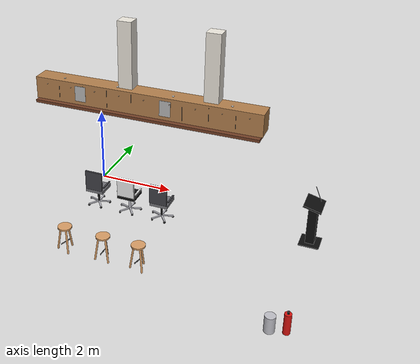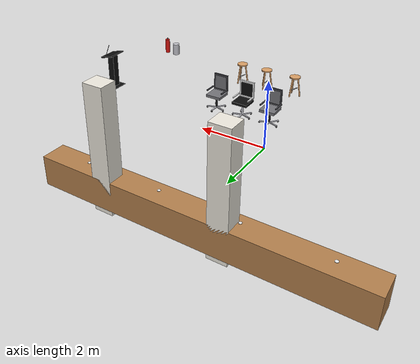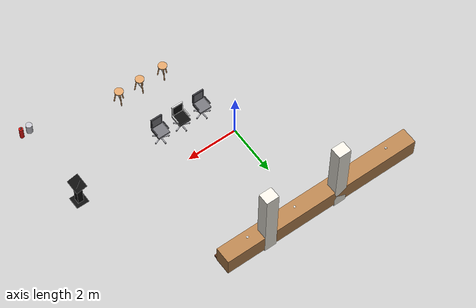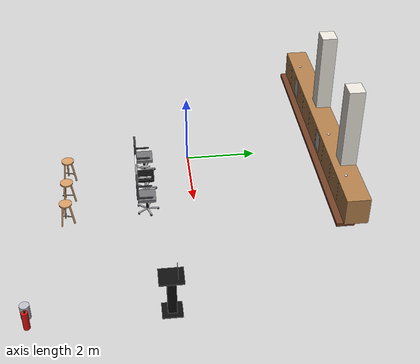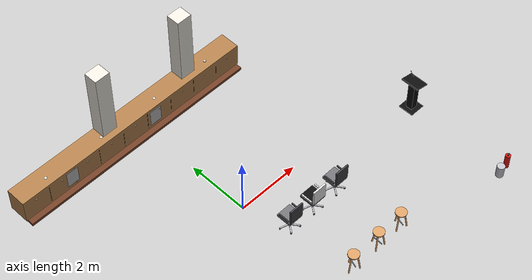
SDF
<sdf version="1.6">
 <world name="mahadev_lab">
  <include><uri>model://sun</uri></include>
  <model name="stool_pc_3">
   <static>true</static>
   <pose>0.7000 -3.4500 0.0000 0.0000 0.0000 1.2530</pose>
   <link name="link">
    <visual name="v1">
     <pose>0.0000 0.0000 0.6400 0.0000 0.0000 0.0000</pose>
     <geometry><cylinder><radius>0.17</radius><length>0.04</length></cylinder></geometry>
     <material>
      <ambient>0.85 0.62 0.4 1</ambient>
      <diffuse>0.85 0.62 0.4 1</diffuse>
      <specular>0.1 0.1 0.1 1</specular>
     </material>
    </visual>
    <visual name="v2">
     <pose>0.1500 0.0000 0.3100 0.0000 -0.1599 0.0000</pose>
     <geometry><cylinder><radius>0.022</radius><length>0.63</length></cylinder></geometry>
     <material>
      <ambient>0.85 0.62 0.4 1</ambient>
      <diffuse>0.85 0.62 0.4 1</diffuse>
      <specular>0.1 0.1 0.1 1</specular>
     </material>
    </visual>
    <visual name="v3">
     <pose>-0.0750 0.1299 0.3100 0.0000 -0.1599 2.0944</pose>
     <geometry><cylinder><radius>0.022</radius><length>0.63</length></cylinder></geometry>
     <material>
      <ambient>0.85 0.62 0.4 1</ambient>
      <diffuse>0.85 0.62 0.4 1</diffuse>
      <specular>0.1 0.1 0.1 1</specular>
     </material>
    </visual>
    <visual name="v4">
     <pose>-0.0750 -0.1299 0.3100 0.0000 -0.1599 4.1888</pose>
     <geometry><cylinder><radius>0.022</radius><length>0.63</length></cylinder></geometry>
     <material>
      <ambient>0.85 0.62 0.4 1</ambient>
      <diffuse>0.85 0.62 0.4 1</diffuse>
      <specular>0.1 0.1 0.1 1</specular>
     </material>
    </visual>
    <visual name="v5">
     <pose>0.0000 0.0000 0.2200 0.0000 0.0000 0.0000</pose>
     <geometry><box><size>0.3 0.02 0.02</size></box></geometry>
     <material>
      <ambient>0.05 0.05 0.05 1</ambient>
      <diffuse>0.05 0.05 0.05 1</diffuse>
      <specular>0.1 0.1 0.1 1</specular>
     </material>
    </visual>
    <collision name="c6">
     <pose>0.0000 0.0000 0.3300 0 0 0</pose>
     <geometry><cylinder><radius>0.2</radius><length>0.66</length></cylinder></geometry>
    </collision>
   </link>
  </model>
  <model name="stool_pc_4">
   <static>true</static>
   <pose>1.7000 -3.4500 0.0000 0.0000 0.0000 1.5383</pose>
   <link name="link">
    <visual name="v1">
     <pose>0.0000 0.0000 0.6400 0.0000 0.0000 0.0000</pose>
     <geometry><cylinder><radius>0.17</radius><length>0.04</length></cylinder></geometry>
     <material>
      <ambient>0.85 0.62 0.4 1</ambient>
      <diffuse>0.85 0.62 0.4 1</diffuse>
      <specular>0.1 0.1 0.1 1</specular>
     </material>
    </visual>
    <visual name="v2">
     <pose>0.1500 0.0000 0.3100 0.0000 -0.1599 0.0000</pose>
     <geometry><cylinder><radius>0.022</radius><length>0.63</length></cylinder></geometry>
     <material>
      <ambient>0.85 0.62 0.4 1</ambient>
      <diffuse>0.85 0.62 0.4 1</diffuse>
      <specular>0.1 0.1 0.1 1</specular>
     </material>
    </visual>
    <visual name="v3">
     <pose>-0.0750 0.1299 0.3100 0.0000 -0.1599 2.0944</pose>
     <geometry><cylinder><radius>0.022</radius><length>0.63</length></cylinder></geometry>
     <material>
      <ambient>0.85 0.62 0.4 1</ambient>
      <diffuse>0.85 0.62 0.4 1</diffuse>
      <specular>0.1 0.1 0.1 1</specular>
     </material>
    </visual>
    <visual name="v4">
     <pose>-0.0750 -0.1299 0.3100 0.0000 -0.1599 4.1888</pose>
     <geometry><cylinder><radius>0.022</radius><length>0.63</length></cylinder></geometry>
     <material>
      <ambient>0.85 0.62 0.4 1</ambient>
      <diffuse>0.85 0.62 0.4 1</diffuse>
      <specular>0.1 0.1 0.1 1</specular>
     </material>
    </visual>
    <visual name="v5">
     <pose>0.0000 0.0000 0.2200 0.0000 0.0000 0.0000</pose>
     <geometry><box><size>0.3 0.02 0.02</size></box></geometry>
     <material>
      <ambient>0.05 0.05 0.05 1</ambient>
      <diffuse>0.05 0.05 0.05 1</diffuse>
      <specular>0.1 0.1 0.1 1</specular>
     </material>
    </visual>
    <collision name="c6">
     <pose>0.0000 0.0000 0.3300 0 0 0</pose>
     <geometry><cylinder><radius>0.2</radius><length>0.66</length></cylinder></geometry>
    </collision>
   </link>
  </model>
  <model name="stool_pc_5">
   <static>true</static>
   <pose>2.6000 -3.4500 0.0000 0.0000 0.0000 1.3275</pose>
   <link name="link">
    <visual name="v1">
     <pose>0.0000 0.0000 0.6400 0.0000 0.0000 0.0000</pose>
     <geometry><cylinder><radius>0.17</radius><length>0.04</length></cylinder></geometry>
     <material>
      <ambient>0.85 0.62 0.4 1</ambient>
      <diffuse>0.85 0.62 0.4 1</diffuse>
      <specular>0.1 0.1 0.1 1</specular>
     </material>
    </visual>
    <visual name="v2">
     <pose>0.1500 0.0000 0.3100 0.0000 -0.1599 0.0000</pose>
     <geometry><cylinder><radius>0.022</radius><length>0.63</length></cylinder></geometry>
     <material>
      <ambient>0.85 0.62 0.4 1</ambient>
      <diffuse>0.85 0.62 0.4 1</diffuse>
      <specular>0.1 0.1 0.1 1</specular>
     </material>
    </visual>
    <visual name="v3">
     <pose>-0.0750 0.1299 0.3100 0.0000 -0.1599 2.0944</pose>
     <geometry><cylinder><radius>0.022</radius><length>0.63</length></cylinder></geometry>
     <material>
      <ambient>0.85 0.62 0.4 1</ambient>
      <diffuse>0.85 0.62 0.4 1</diffuse>
      <specular>0.1 0.1 0.1 1</specular>
     </material>
    </visual>
    <visual name="v4">
     <pose>-0.0750 -0.1299 0.3100 0.0000 -0.1599 4.1888</pose>
     <geometry><cylinder><radius>0.022</radius><length>0.63</length></cylinder></geometry>
     <material>
      <ambient>0.85 0.62 0.4 1</ambient>
      <diffuse>0.85 0.62 0.4 1</diffuse>
      <specular>0.1 0.1 0.1 1</specular>
     </material>
    </visual>
    <visual name="v5">
     <pose>0.0000 0.0000 0.2200 0.0000 0.0000 0.0000</pose>
     <geometry><box><size>0.3 0.02 0.02</size></box></geometry>
     <material>
      <ambient>0.05 0.05 0.05 1</ambient>
      <diffuse>0.05 0.05 0.05 1</diffuse>
      <specular>0.1 0.1 0.1 1</specular>
     </material>
    </visual>
    <collision name="c6">
     <pose>0.0000 0.0000 0.3300 0 0 0</pose>
     <geometry><cylinder><radius>0.2</radius><length>0.66</length></cylinder></geometry>
    </collision>
   </link>
  </model>
  <model name="left_counter">
   <static>true</static>
   <link name="link">
    <visual name="v1">
     <pose>-0.4500 4.1750 0.4900 0.0000 0.0000 0.0000</pose>
     <geometry><box><size>8.1 0.65 0.78</size></box></geometry>
     <material>
      <script>
       <uri>model://mahadev_lab_media/materials/scripts</uri>
       <uri>model://mahadev_lab_media/materials/textures</uri>
       <name>Mahadev/wood_light_8.1_1</name>
      </script>
     </material>
    </visual>
    <collision name="c1">
     <pose>-0.4500 4.1750 0.4900 0.0000 0.0000 0.0000</pose>
     <geometry><box><size>8.1 0.65 0.78</size></box></geometry>
     <surface><friction><ode><mu>100</mu><mu2>100</mu2></ode></friction></surface>
    </collision>
    <visual name="v2">
     <pose>-0.4500 3.9100 0.0500 0.0000 0.0000 0.0000</pose>
     <geometry><box><size>8 0.5 0.1</size></box></geometry>
     <material>
      <ambient>0.45 0.25 0.15 1</ambient>
      <diffuse>0.45 0.25 0.15 1</diffuse>
      <specular>0.1 0.1 0.1 1</specular>
     </material>
    </visual>
    <visual name="v3">
     <pose>-3.6000 3.8470 0.4900 0.0000 0.0000 0.0000</pose>
     <geometry><box><size>0.008 0.004 0.63</size></box></geometry>
     <material>
      <ambient>0.25 0.25 0.27 1</ambient>
      <diffuse>0.25 0.25 0.27 1</diffuse>
      <specular>0.1 0.1 0.1 1</specular>
     </material>
    </visual>
    <visual name="v4">
     <pose>-2.7000 3.8470 0.4900 0.0000 0.0000 0.0000</pose>
     <geometry><box><size>0.008 0.004 0.63</size></box></geometry>
     <material>
      <ambient>0.25 0.25 0.27 1</ambient>
      <diffuse>0.25 0.25 0.27 1</diffuse>
      <specular>0.1 0.1 0.1 1</specular>
     </material>
    </visual>
    <visual name="v5">
     <pose>-1.8000 3.8470 0.4900 0.0000 0.0000 0.0000</pose>
     <geometry><box><size>0.008 0.004 0.63</size></box></geometry>
     <material>
      <ambient>0.25 0.25 0.27 1</ambient>
      <diffuse>0.25 0.25 0.27 1</diffuse>
      <specular>0.1 0.1 0.1 1</specular>
     </material>
    </visual>
    <visual name="v6">
     <pose>-0.9000 3.8470 0.4900 0.0000 0.0000 0.0000</pose>
     <geometry><box><size>0.008 0.004 0.63</size></box></geometry>
     <material>
      <ambient>0.25 0.25 0.27 1</ambient>
      <diffuse>0.25 0.25 0.27 1</diffuse>
      <specular>0.1 0.1 0.1 1</specular>
     </material>
    </visual>
    <visual name="v7">
     <pose>0.0000 3.8470 0.4900 0.0000 0.0000 0.0000</pose>
     <geometry><box><size>0.008 0.004 0.63</size></box></geometry>
     <material>
      <ambient>0.25 0.25 0.27 1</ambient>
      <diffuse>0.25 0.25 0.27 1</diffuse>
      <specular>0.1 0.1 0.1 1</specular>
     </material>
    </visual>
    <visual name="v8">
     <pose>0.9000 3.8470 0.4900 0.0000 0.0000 0.0000</pose>
     <geometry><box><size>0.008 0.004 0.63</size></box></geometry>
     <material>
      <ambient>0.25 0.25 0.27 1</ambient>
      <diffuse>0.25 0.25 0.27 1</diffuse>
      <specular>0.1 0.1 0.1 1</specular>
     </material>
    </visual>
    <visual name="v9">
     <pose>1.8000 3.8470 0.4900 0.0000 0.0000 0.0000</pose>
     <geometry><box><size>0.008 0.004 0.63</size></box></geometry>
     <material>
      <ambient>0.25 0.25 0.27 1</ambient>
      <diffuse>0.25 0.25 0.27 1</diffuse>
      <specular>0.1 0.1 0.1 1</specular>
     </material>
    </visual>
    <visual name="v10">
     <pose>2.7000 3.8470 0.4900 0.0000 0.0000 0.0000</pose>
     <geometry><box><size>0.008 0.004 0.63</size></box></geometry>
     <material>
      <ambient>0.25 0.25 0.27 1</ambient>
      <diffuse>0.25 0.25 0.27 1</diffuse>
      <specular>0.1 0.1 0.1 1</specular>
     </material>
    </visual>
    <visual name="v11">
     <pose>-4.0500 3.8470 0.6800 0.0000 0.0000 0.0000</pose>
     <geometry><sphere><radius>0.02</radius></sphere></geometry>
     <material>
      <ambient>0.84 0.7 0.58 1</ambient>
      <diffuse>0.84 0.7 0.58 1</diffuse>
      <specular>0.1 0.1 0.1 1</specular>
     </material>
    </visual>
    <visual name="v12">
     <pose>-3.1500 3.8470 0.6800 0.0000 0.0000 0.0000</pose>
     <geometry><sphere><radius>0.02</radius></sphere></geometry>
     <material>
      <ambient>0.84 0.7 0.58 1</ambient>
      <diffuse>0.84 0.7 0.58 1</diffuse>
      <specular>0.1 0.1 0.1 1</specular>
     </material>
    </visual>
    <visual name="v13">
     <pose>-2.2500 3.8470 0.6800 0.0000 0.0000 0.0000</pose>
     <geometry><sphere><radius>0.02</radius></sphere></geometry>
     <material>
      <ambient>0.84 0.7 0.58 1</ambient>
      <diffuse>0.84 0.7 0.58 1</diffuse>
      <specular>0.1 0.1 0.1 1</specular>
     </material>
    </visual>
    <visual name="v14">
     <pose>-1.3500 3.8470 0.6800 0.0000 0.0000 0.0000</pose>
     <geometry><sphere><radius>0.02</radius></sphere></geometry>
     <material>
      <ambient>0.84 0.7 0.58 1</ambient>
      <diffuse>0.84 0.7 0.58 1</diffuse>
      <specular>0.1 0.1 0.1 1</specular>
     </material>
    </visual>
    <visual name="v15">
     <pose>-0.4500 3.8470 0.6800 0.0000 0.0000 0.0000</pose>
     <geometry><sphere><radius>0.02</radius></sphere></geometry>
     <material>
      <ambient>0.84 0.7 0.58 1</ambient>
      <diffuse>0.84 0.7 0.58 1</diffuse>
      <specular>0.1 0.1 0.1 1</specular>
     </material>
    </visual>
    <visual name="v16">
     <pose>0.4500 3.8470 0.6800 0.0000 0.0000 0.0000</pose>
     <geometry><sphere><radius>0.02</radius></sphere></geometry>
     <material>
      <ambient>0.84 0.7 0.58 1</ambient>
      <diffuse>0.84 0.7 0.58 1</diffuse>
      <specular>0.1 0.1 0.1 1</specular>
     </material>
    </visual>
    <visual name="v17">
     <pose>1.3500 3.8470 0.6800 0.0000 0.0000 0.0000</pose>
     <geometry><sphere><radius>0.02</radius></sphere></geometry>
     <material>
      <ambient>0.84 0.7 0.58 1</ambient>
      <diffuse>0.84 0.7 0.58 1</diffuse>
      <specular>0.1 0.1 0.1 1</specular>
     </material>
    </visual>
    <visual name="v18">
     <pose>2.2500 3.8470 0.6800 0.0000 0.0000 0.0000</pose>
     <geometry><sphere><radius>0.02</radius></sphere></geometry>
     <material>
      <ambient>0.84 0.7 0.58 1</ambient>
      <diffuse>0.84 0.7 0.58 1</diffuse>
      <specular>0.1 0.1 0.1 1</specular>
     </material>
    </visual>
    <visual name="v19">
     <pose>3.1500 3.8470 0.6800 0.0000 0.0000 0.0000</pose>
     <geometry><sphere><radius>0.02</radius></sphere></geometry>
     <material>
      <ambient>0.84 0.7 0.58 1</ambient>
      <diffuse>0.84 0.7 0.58 1</diffuse>
      <specular>0.1 0.1 0.1 1</specular>
     </material>
    </visual>
    <visual name="v20">
     <pose>-1.2000 4.2800 1.6000 0.0000 0.0000 0.0000</pose>
     <geometry><box><size>0.5 0.44 3.2</size></box></geometry>
     <material>
      <ambient>0.93 0.91 0.87 1</ambient>
      <diffuse>0.93 0.91 0.87 1</diffuse>
      <specular>0.1 0.1 0.1 1</specular>
     </material>
    </visual>
    <visual name="v21">
     <pose>1.8000 4.2800 1.6000 0.0000 0.0000 0.0000</pose>
     <geometry><box><size>0.5 0.44 3.2</size></box></geometry>
     <material>
      <ambient>0.93 0.91 0.87 1</ambient>
      <diffuse>0.93 0.91 0.87 1</diffuse>
      <specular>0.1 0.1 0.1 1</specular>
     </material>
    </visual>
    <visual name="v22">
     <pose>-2.8000 3.8440 0.5000 0.0000 0.0000 0.0000</pose>
     <geometry><box><size>0.4 0.004 0.55</size></box></geometry>
     <material>
      <script>
       <uri>model://mahadev_lab_media/materials/scripts</uri>
       <uri>model://mahadev_lab_media/materials/textures</uri>
       <name>Mahadev/lattice_2_3</name>
      </script>
     </material>
    </visual>
    <visual name="v23">
     <pose>0.3000 3.8440 0.5000 0.0000 0.0000 0.0000</pose>
     <geometry><box><size>0.4 0.004 0.55</size></box></geometry>
     <material>
      <script>
       <uri>model://mahadev_lab_media/materials/scripts</uri>
       <uri>model://mahadev_lab_media/materials/textures</uri>
       <name>Mahadev/lattice_2_3</name>
      </script>
     </material>
    </visual>
    <visual name="v24">
     <pose>-3.5000 4.1000 0.8850 0.0000 0.0000 0.0000</pose>
     <geometry><cylinder><radius>0.04</radius><length>0.01</length></cylinder></geometry>
     <material>
      <ambient>0.92 0.92 0.92 1</ambient>
      <diffuse>0.92 0.92 0.92 1</diffuse>
      <specular>0.1 0.1 0.1 1</specular>
     </material>
    </visual>
    <visual name="v25">
     <pose>-1.5000 4.1000 0.8850 0.0000 0.0000 0.0000</pose>
     <geometry><cylinder><radius>0.04</radius><length>0.01</length></cylinder></geometry>
     <material>
      <ambient>0.92 0.92 0.92 1</ambient>
      <diffuse>0.92 0.92 0.92 1</diffuse>
      <specular>0.1 0.1 0.1 1</specular>
     </material>
    </visual>
    <visual name="v26">
     <pose>0.5000 4.1000 0.8850 0.0000 0.0000 0.0000</pose>
     <geometry><cylinder><radius>0.04</radius><length>0.01</length></cylinder></geometry>
     <material>
      <ambient>0.92 0.92 0.92 1</ambient>
      <diffuse>0.92 0.92 0.92 1</diffuse>
      <specular>0.1 0.1 0.1 1</specular>
     </material>
    </visual>
    <visual name="v27">
     <pose>2.5000 4.1000 0.8850 0.0000 0.0000 0.0000</pose>
     <geometry><cylinder><radius>0.04</radius><length>0.01</length></cylinder></geometry>
     <material>
      <ambient>0.92 0.92 0.92 1</ambient>
      <diffuse>0.92 0.92 0.92 1</diffuse>
      <specular>0.1 0.1 0.1 1</specular>
     </material>
    </visual>
   </link>
  </model>
  <model name="podium">
   <static>true</static>
   <pose>6.0500 -0.9000 0.0000 0.0000 0.0000 0.0000</pose>
   <link name="link">
    <visual name="v1">
     <pose>0.0000 0.0000 0.0100 0.0000 0.0000 0.0000</pose>
     <geometry><box><size>0.5 0.5 0.02</size></box></geometry>
     <material>
      <ambient>0.05 0.05 0.05 1</ambient>
      <diffuse>0.05 0.05 0.05 1</diffuse>
      <specular>0.1 0.1 0.1 1</specular>
     </material>
    </visual>
    <collision name="c1">
     <pose>0.0000 0.0000 0.0100 0.0000 0.0000 0.0000</pose>
     <geometry><box><size>0.5 0.5 0.02</size></box></geometry>
     <surface><friction><ode><mu>100</mu><mu2>100</mu2></ode></friction></surface>
    </collision>
    <visual name="v2">
     <pose>0.0000 0.0000 0.5500 0.0000 0.0000 0.0000</pose>
     <geometry><box><size>0.22 0.22 1.05</size></box></geometry>
     <material>
      <ambient>0.05 0.05 0.05 1</ambient>
      <diffuse>0.05 0.05 0.05 1</diffuse>
      <specular>0.1 0.1 0.1 1</specular>
     </material>
    </visual>
    <collision name="c2">
     <pose>0.0000 0.0000 0.5500 0.0000 0.0000 0.0000</pose>
     <geometry><box><size>0.22 0.22 1.05</size></box></geometry>
     <surface><friction><ode><mu>100</mu><mu2>100</mu2></ode></friction></surface>
    </collision>
    <visual name="v3">
     <pose>0.0000 0.0000 1.1000 0.0000 0.2500 0.0000</pose>
     <geometry><box><size>0.45 0.6 0.04</size></box></geometry>
     <material>
      <ambient>0.05 0.05 0.05 1</ambient>
      <diffuse>0.05 0.05 0.05 1</diffuse>
      <specular>0.1 0.1 0.1 1</specular>
     </material>
    </visual>
    <visual name="v4">
     <pose>0.0500 0.1500 1.3000 0.0000 -0.4000 0.0000</pose>
     <geometry><cylinder><radius>0.006</radius><length>0.4</length></cylinder></geometry>
     <material>
      <ambient>0.25 0.25 0.27 1</ambient>
      <diffuse>0.25 0.25 0.27 1</diffuse>
      <specular>0.1 0.1 0.1 1</specular>
     </material>
    </visual>
   </link>
  </model>
  <model name="fire_extinguisher">
   <static>true</static>
   <pose>6.2500 -4.2500 0.0000 0.0000 0.0000 0.0000</pose>
   <link name="link">
    <visual name="v1">
     <pose>0.0000 0.0000 0.2700 0.0000 0.0000 0.0000</pose>
     <geometry><cylinder><radius>0.08</radius><length>0.5</length></cylinder></geometry>
     <material>
      <ambient>0.85 0.08 0.06 1</ambient>
      <diffuse>0.85 0.08 0.06 1</diffuse>
      <specular>0.1 0.1 0.1 1</specular>
     </material>
    </visual>
    <collision name="c1">
     <pose>0.0000 0.0000 0.2700 0.0000 0.0000 0.0000</pose>
     <geometry><cylinder><radius>0.08</radius><length>0.5</length></cylinder></geometry>
     <surface><friction><ode><mu>100</mu><mu2>100</mu2></ode></friction></surface>
    </collision>
    <visual name="v2">
     <pose>0.0000 0.0000 0.5500 0.0000 0.0000 0.0000</pose>
     <geometry><cylinder><radius>0.025</radius><length>0.08</length></cylinder></geometry>
     <material>
      <ambient>0.05 0.05 0.05 1</ambient>
      <diffuse>0.05 0.05 0.05 1</diffuse>
      <specular>0.1 0.1 0.1 1</specular>
     </material>
    </visual>
   </link>
  </model>
  <model name="dustbin">
   <static>true</static>
   <pose>5.9000 -4.3000 0.0000 0.0000 0.0000 0.0000</pose>
   <link name="link">
    <visual name="v1">
     <pose>0.0000 0.0000 0.2000 0.0000 0.0000 0.0000</pose>
     <geometry><cylinder><radius>0.12</radius><length>0.4</length></cylinder></geometry>
     <material>
      <ambient>0.75 0.75 0.78 1</ambient>
      <diffuse>0.75 0.75 0.78 1</diffuse>
      <specular>0.1 0.1 0.1 1</specular>
     </material>
    </visual>
    <collision name="c1">
     <pose>0.0000 0.0000 0.2000 0.0000 0.0000 0.0000</pose>
     <geometry><cylinder><radius>0.12</radius><length>0.4</length></cylinder></geometry>
     <surface><friction><ode><mu>100</mu><mu2>100</mu2></ode></friction></surface>
    </collision>
   </link>
  </model>
  <model name="chair_r_3">
   <static>true</static>
   <pose>0.5000 -1.3000 0.0000 0.0000 0.0000 1.5708</pose>
   <link name="link">
    <visual name="v1">
     <pose>0.1500 0.0000 0.0600 0.0000 0.0000 0.0000</pose>
     <geometry><box><size>0.3 0.04 0.03</size></box></geometry>
     <material>
      <ambient>0.75 0.75 0.78 1</ambient>
      <diffuse>0.75 0.75 0.78 1</diffuse>
      <specular>0.1 0.1 0.1 1</specular>
     </material>
    </visual>
    <visual name="v2">
     <pose>0.2900 0.0000 0.0300 0.0000 0.0000 0.0000</pose>
     <geometry><sphere><radius>0.03</radius></sphere></geometry>
     <material>
      <ambient>0.05 0.05 0.05 1</ambient>
      <diffuse>0.05 0.05 0.05 1</diffuse>
      <specular>0.1 0.1 0.1 1</specular>
     </material>
    </visual>
    <visual name="v3">
     <pose>0.0464 0.1427 0.0600 0.0000 0.0000 1.2566</pose>
     <geometry><box><size>0.3 0.04 0.03</size></box></geometry>
     <material>
      <ambient>0.75 0.75 0.78 1</ambient>
      <diffuse>0.75 0.75 0.78 1</diffuse>
      <specular>0.1 0.1 0.1 1</specular>
     </material>
    </visual>
    <visual name="v4">
     <pose>0.0896 0.2758 0.0300 0.0000 0.0000 0.0000</pose>
     <geometry><sphere><radius>0.03</radius></sphere></geometry>
     <material>
      <ambient>0.05 0.05 0.05 1</ambient>
      <diffuse>0.05 0.05 0.05 1</diffuse>
      <specular>0.1 0.1 0.1 1</specular>
     </material>
    </visual>
    <visual name="v5">
     <pose>-0.1214 0.0882 0.0600 0.0000 0.0000 2.5133</pose>
     <geometry><box><size>0.3 0.04 0.03</size></box></geometry>
     <material>
      <ambient>0.75 0.75 0.78 1</ambient>
      <diffuse>0.75 0.75 0.78 1</diffuse>
      <specular>0.1 0.1 0.1 1</specular>
     </material>
    </visual>
    <visual name="v6">
     <pose>-0.2346 0.1705 0.0300 0.0000 0.0000 0.0000</pose>
     <geometry><sphere><radius>0.03</radius></sphere></geometry>
     <material>
      <ambient>0.05 0.05 0.05 1</ambient>
      <diffuse>0.05 0.05 0.05 1</diffuse>
      <specular>0.1 0.1 0.1 1</specular>
     </material>
    </visual>
    <visual name="v7">
     <pose>-0.1214 -0.0882 0.0600 0.0000 0.0000 3.7699</pose>
     <geometry><box><size>0.3 0.04 0.03</size></box></geometry>
     <material>
      <ambient>0.75 0.75 0.78 1</ambient>
      <diffuse>0.75 0.75 0.78 1</diffuse>
      <specular>0.1 0.1 0.1 1</specular>
     </material>
    </visual>
    <visual name="v8">
     <pose>-0.2346 -0.1705 0.0300 0.0000 0.0000 0.0000</pose>
     <geometry><sphere><radius>0.03</radius></sphere></geometry>
     <material>
      <ambient>0.05 0.05 0.05 1</ambient>
      <diffuse>0.05 0.05 0.05 1</diffuse>
      <specular>0.1 0.1 0.1 1</specular>
     </material>
    </visual>
    <visual name="v9">
     <pose>0.0464 -0.1427 0.0600 0.0000 0.0000 5.0265</pose>
     <geometry><box><size>0.3 0.04 0.03</size></box></geometry>
     <material>
      <ambient>0.75 0.75 0.78 1</ambient>
      <diffuse>0.75 0.75 0.78 1</diffuse>
      <specular>0.1 0.1 0.1 1</specular>
     </material>
    </visual>
    <visual name="v10">
     <pose>0.0896 -0.2758 0.0300 0.0000 0.0000 0.0000</pose>
     <geometry><sphere><radius>0.03</radius></sphere></geometry>
     <material>
      <ambient>0.05 0.05 0.05 1</ambient>
      <diffuse>0.05 0.05 0.05 1</diffuse>
      <specular>0.1 0.1 0.1 1</specular>
     </material>
    </visual>
    <visual name="v11">
     <pose>0.0000 0.0000 0.2700 0.0000 0.0000 0.0000</pose>
     <geometry><cylinder><radius>0.03</radius><length>0.4</length></cylinder></geometry>
     <material>
      <ambient>0.05 0.05 0.05 1</ambient>
      <diffuse>0.05 0.05 0.05 1</diffuse>
      <specular>0.1 0.1 0.1 1</specular>
     </material>
    </visual>
    <visual name="v12">
     <pose>0.0000 0.0000 0.4800 0.0000 0.0000 0.0000</pose>
     <geometry><box><size>0.48 0.48 0.08</size></box></geometry>
     <material>
      <ambient>0.45 0.45 0.47 1</ambient>
      <diffuse>0.45 0.45 0.47 1</diffuse>
      <specular>0.1 0.1 0.1 1</specular>
     </material>
    </visual>
    <visual name="v13">
     <pose>-0.2400 0.0000 0.8000 0.0000 0.0000 0.0000</pose>
     <geometry><box><size>0.05 0.46 0.52</size></box></geometry>
     <material>
      <ambient>0.25 0.25 0.27 1</ambient>
      <diffuse>0.25 0.25 0.27 1</diffuse>
      <specular>0.1 0.1 0.1 1</specular>
     </material>
    </visual>
    <visual name="v14">
     <pose>-0.2150 0.0000 0.8000 0.0000 0.0000 0.0000</pose>
     <geometry><box><size>0.01 0.38 0.42</size></box></geometry>
     <material>
      <ambient>0.45 0.45 0.47 1</ambient>
      <diffuse>0.45 0.45 0.47 1</diffuse>
      <specular>0.1 0.1 0.1 1</specular>
     </material>
    </visual>
    <visual name="v15">
     <pose>-0.0200 -0.2500 0.6200 0.0000 0.0000 0.0000</pose>
     <geometry><box><size>0.36 0.04 0.03</size></box></geometry>
     <material>
      <ambient>0.25 0.25 0.27 1</ambient>
      <diffuse>0.25 0.25 0.27 1</diffuse>
      <specular>0.1 0.1 0.1 1</specular>
     </material>
    </visual>
    <visual name="v16">
     <pose>-0.0200 0.2500 0.6200 0.0000 0.0000 0.0000</pose>
     <geometry><box><size>0.36 0.04 0.03</size></box></geometry>
     <material>
      <ambient>0.25 0.25 0.27 1</ambient>
      <diffuse>0.25 0.25 0.27 1</diffuse>
      <specular>0.1 0.1 0.1 1</specular>
     </material>
    </visual>
    <collision name="c17">
     <pose>0.0000 0.0000 0.2750 0 0 0</pose>
     <geometry><cylinder><radius>0.3</radius><length>0.55</length></cylinder></geometry>
    </collision>
   </link>
  </model>
  <model name="chair_r_4">
   <static>true</static>
   <pose>1.4000 -1.3000 0.0000 0.0000 0.0000 1.5708</pose>
   <link name="link">
    <visual name="v1">
     <pose>0.1500 0.0000 0.0600 0.0000 0.0000 0.0000</pose>
     <geometry><box><size>0.3 0.04 0.03</size></box></geometry>
     <material>
      <ambient>0.75 0.75 0.78 1</ambient>
      <diffuse>0.75 0.75 0.78 1</diffuse>
      <specular>0.1 0.1 0.1 1</specular>
     </material>
    </visual>
    <visual name="v2">
     <pose>0.2900 0.0000 0.0300 0.0000 0.0000 0.0000</pose>
     <geometry><sphere><radius>0.03</radius></sphere></geometry>
     <material>
      <ambient>0.05 0.05 0.05 1</ambient>
      <diffuse>0.05 0.05 0.05 1</diffuse>
      <specular>0.1 0.1 0.1 1</specular>
     </material>
    </visual>
    <visual name="v3">
     <pose>0.0464 0.1427 0.0600 0.0000 0.0000 1.2566</pose>
     <geometry><box><size>0.3 0.04 0.03</size></box></geometry>
     <material>
      <ambient>0.75 0.75 0.78 1</ambient>
      <diffuse>0.75 0.75 0.78 1</diffuse>
      <specular>0.1 0.1 0.1 1</specular>
     </material>
    </visual>
    <visual name="v4">
     <pose>0.0896 0.2758 0.0300 0.0000 0.0000 0.0000</pose>
     <geometry><sphere><radius>0.03</radius></sphere></geometry>
     <material>
      <ambient>0.05 0.05 0.05 1</ambient>
      <diffuse>0.05 0.05 0.05 1</diffuse>
      <specular>0.1 0.1 0.1 1</specular>
     </material>
    </visual>
    <visual name="v5">
     <pose>-0.1214 0.0882 0.0600 0.0000 0.0000 2.5133</pose>
     <geometry><box><size>0.3 0.04 0.03</size></box></geometry>
     <material>
      <ambient>0.75 0.75 0.78 1</ambient>
      <diffuse>0.75 0.75 0.78 1</diffuse>
      <specular>0.1 0.1 0.1 1</specular>
     </material>
    </visual>
    <visual name="v6">
     <pose>-0.2346 0.1705 0.0300 0.0000 0.0000 0.0000</pose>
     <geometry><sphere><radius>0.03</radius></sphere></geometry>
     <material>
      <ambient>0.05 0.05 0.05 1</ambient>
      <diffuse>0.05 0.05 0.05 1</diffuse>
      <specular>0.1 0.1 0.1 1</specular>
     </material>
    </visual>
    <visual name="v7">
     <pose>-0.1214 -0.0882 0.0600 0.0000 0.0000 3.7699</pose>
     <geometry><box><size>0.3 0.04 0.03</size></box></geometry>
     <material>
      <ambient>0.75 0.75 0.78 1</ambient>
      <diffuse>0.75 0.75 0.78 1</diffuse>
      <specular>0.1 0.1 0.1 1</specular>
     </material>
    </visual>
    <visual name="v8">
     <pose>-0.2346 -0.1705 0.0300 0.0000 0.0000 0.0000</pose>
     <geometry><sphere><radius>0.03</radius></sphere></geometry>
     <material>
      <ambient>0.05 0.05 0.05 1</ambient>
      <diffuse>0.05 0.05 0.05 1</diffuse>
      <specular>0.1 0.1 0.1 1</specular>
     </material>
    </visual>
    <visual name="v9">
     <pose>0.0464 -0.1427 0.0600 0.0000 0.0000 5.0265</pose>
     <geometry><box><size>0.3 0.04 0.03</size></box></geometry>
     <material>
      <ambient>0.75 0.75 0.78 1</ambient>
      <diffuse>0.75 0.75 0.78 1</diffuse>
      <specular>0.1 0.1 0.1 1</specular>
     </material>
    </visual>
    <visual name="v10">
     <pose>0.0896 -0.2758 0.0300 0.0000 0.0000 0.0000</pose>
     <geometry><sphere><radius>0.03</radius></sphere></geometry>
     <material>
      <ambient>0.05 0.05 0.05 1</ambient>
      <diffuse>0.05 0.05 0.05 1</diffuse>
      <specular>0.1 0.1 0.1 1</specular>
     </material>
    </visual>
    <visual name="v11">
     <pose>0.0000 0.0000 0.2700 0.0000 0.0000 0.0000</pose>
     <geometry><cylinder><radius>0.03</radius><length>0.4</length></cylinder></geometry>
     <material>
      <ambient>0.75 0.75 0.78 1</ambient>
      <diffuse>0.75 0.75 0.78 1</diffuse>
      <specular>0.1 0.1 0.1 1</specular>
     </material>
    </visual>
    <visual name="v12">
     <pose>0.0000 0.0000 0.4800 0.0000 0.0000 0.0000</pose>
     <geometry><box><size>0.48 0.48 0.08</size></box></geometry>
     <material>
      <ambient>0.05 0.05 0.05 1</ambient>
      <diffuse>0.05 0.05 0.05 1</diffuse>
      <specular>0.1 0.1 0.1 1</specular>
     </material>
    </visual>
    <visual name="v13">
     <pose>-0.2400 0.0000 0.8000 0.0000 0.0000 0.0000</pose>
     <geometry><box><size>0.05 0.46 0.52</size></box></geometry>
     <material>
      <ambient>0.92 0.92 0.92 1</ambient>
      <diffuse>0.92 0.92 0.92 1</diffuse>
      <specular>0.1 0.1 0.1 1</specular>
     </material>
    </visual>
    <visual name="v14">
     <pose>-0.2150 0.0000 0.8000 0.0000 0.0000 0.0000</pose>
     <geometry><box><size>0.01 0.38 0.42</size></box></geometry>
     <material>
      <ambient>0.05 0.05 0.05 1</ambient>
      <diffuse>0.05 0.05 0.05 1</diffuse>
      <specular>0.1 0.1 0.1 1</specular>
     </material>
    </visual>
    <visual name="v15">
     <pose>-0.0200 -0.2500 0.6200 0.0000 0.0000 0.0000</pose>
     <geometry><box><size>0.36 0.04 0.03</size></box></geometry>
     <material>
      <ambient>0.92 0.92 0.92 1</ambient>
      <diffuse>0.92 0.92 0.92 1</diffuse>
      <specular>0.1 0.1 0.1 1</specular>
     </material>
    </visual>
    <visual name="v16">
     <pose>-0.0200 0.2500 0.6200 0.0000 0.0000 0.0000</pose>
     <geometry><box><size>0.36 0.04 0.03</size></box></geometry>
     <material>
      <ambient>0.92 0.92 0.92 1</ambient>
      <diffuse>0.92 0.92 0.92 1</diffuse>
      <specular>0.1 0.1 0.1 1</specular>
     </material>
    </visual>
    <collision name="c17">
     <pose>0.0000 0.0000 0.2750 0 0 0</pose>
     <geometry><cylinder><radius>0.3</radius><length>0.55</length></cylinder></geometry>
    </collision>
   </link>
  </model>
  <model name="chair_r_5">
   <static>true</static>
   <pose>2.3000 -1.3000 0.0000 0.0000 0.0000 1.5708</pose>
   <link name="link">
    <visual name="v1">
     <pose>0.1500 0.0000 0.0600 0.0000 0.0000 0.0000</pose>
     <geometry><box><size>0.3 0.04 0.03</size></box></geometry>
     <material>
      <ambient>0.75 0.75 0.78 1</ambient>
      <diffuse>0.75 0.75 0.78 1</diffuse>
      <specular>0.1 0.1 0.1 1</specular>
     </material>
    </visual>
    <visual name="v2">
     <pose>0.2900 0.0000 0.0300 0.0000 0.0000 0.0000</pose>
     <geometry><sphere><radius>0.03</radius></sphere></geometry>
     <material>
      <ambient>0.05 0.05 0.05 1</ambient>
      <diffuse>0.05 0.05 0.05 1</diffuse>
      <specular>0.1 0.1 0.1 1</specular>
     </material>
    </visual>
    <visual name="v3">
     <pose>0.0464 0.1427 0.0600 0.0000 0.0000 1.2566</pose>
     <geometry><box><size>0.3 0.04 0.03</size></box></geometry>
     <material>
      <ambient>0.75 0.75 0.78 1</ambient>
      <diffuse>0.75 0.75 0.78 1</diffuse>
      <specular>0.1 0.1 0.1 1</specular>
     </material>
    </visual>
    <visual name="v4">
     <pose>0.0896 0.2758 0.0300 0.0000 0.0000 0.0000</pose>
     <geometry><sphere><radius>0.03</radius></sphere></geometry>
     <material>
      <ambient>0.05 0.05 0.05 1</ambient>
      <diffuse>0.05 0.05 0.05 1</diffuse>
      <specular>0.1 0.1 0.1 1</specular>
     </material>
    </visual>
    <visual name="v5">
     <pose>-0.1214 0.0882 0.0600 0.0000 0.0000 2.5133</pose>
     <geometry><box><size>0.3 0.04 0.03</size></box></geometry>
     <material>
      <ambient>0.75 0.75 0.78 1</ambient>
      <diffuse>0.75 0.75 0.78 1</diffuse>
      <specular>0.1 0.1 0.1 1</specular>
     </material>
    </visual>
    <visual name="v6">
     <pose>-0.2346 0.1705 0.0300 0.0000 0.0000 0.0000</pose>
     <geometry><sphere><radius>0.03</radius></sphere></geometry>
     <material>
      <ambient>0.05 0.05 0.05 1</ambient>
      <diffuse>0.05 0.05 0.05 1</diffuse>
      <specular>0.1 0.1 0.1 1</specular>
     </material>
    </visual>
    <visual name="v7">
     <pose>-0.1214 -0.0882 0.0600 0.0000 0.0000 3.7699</pose>
     <geometry><box><size>0.3 0.04 0.03</size></box></geometry>
     <material>
      <ambient>0.75 0.75 0.78 1</ambient>
      <diffuse>0.75 0.75 0.78 1</diffuse>
      <specular>0.1 0.1 0.1 1</specular>
     </material>
    </visual>
    <visual name="v8">
     <pose>-0.2346 -0.1705 0.0300 0.0000 0.0000 0.0000</pose>
     <geometry><sphere><radius>0.03</radius></sphere></geometry>
     <material>
      <ambient>0.05 0.05 0.05 1</ambient>
      <diffuse>0.05 0.05 0.05 1</diffuse>
      <specular>0.1 0.1 0.1 1</specular>
     </material>
    </visual>
    <visual name="v9">
     <pose>0.0464 -0.1427 0.0600 0.0000 0.0000 5.0265</pose>
     <geometry><box><size>0.3 0.04 0.03</size></box></geometry>
     <material>
      <ambient>0.75 0.75 0.78 1</ambient>
      <diffuse>0.75 0.75 0.78 1</diffuse>
      <specular>0.1 0.1 0.1 1</specular>
     </material>
    </visual>
    <visual name="v10">
     <pose>0.0896 -0.2758 0.0300 0.0000 0.0000 0.0000</pose>
     <geometry><sphere><radius>0.03</radius></sphere></geometry>
     <material>
      <ambient>0.05 0.05 0.05 1</ambient>
      <diffuse>0.05 0.05 0.05 1</diffuse>
      <specular>0.1 0.1 0.1 1</specular>
     </material>
    </visual>
    <visual name="v11">
     <pose>0.0000 0.0000 0.2700 0.0000 0.0000 0.0000</pose>
     <geometry><cylinder><radius>0.03</radius><length>0.4</length></cylinder></geometry>
     <material>
      <ambient>0.05 0.05 0.05 1</ambient>
      <diffuse>0.05 0.05 0.05 1</diffuse>
      <specular>0.1 0.1 0.1 1</specular>
     </material>
    </visual>
    <visual name="v12">
     <pose>0.0000 0.0000 0.4800 0.0000 0.0000 0.0000</pose>
     <geometry><box><size>0.48 0.48 0.08</size></box></geometry>
     <material>
      <ambient>0.45 0.45 0.47 1</ambient>
      <diffuse>0.45 0.45 0.47 1</diffuse>
      <specular>0.1 0.1 0.1 1</specular>
     </material>
    </visual>
    <visual name="v13">
     <pose>-0.2400 0.0000 0.8000 0.0000 0.0000 0.0000</pose>
     <geometry><box><size>0.05 0.46 0.52</size></box></geometry>
     <material>
      <ambient>0.25 0.25 0.27 1</ambient>
      <diffuse>0.25 0.25 0.27 1</diffuse>
      <specular>0.1 0.1 0.1 1</specular>
     </material>
    </visual>
    <visual name="v14">
     <pose>-0.2150 0.0000 0.8000 0.0000 0.0000 0.0000</pose>
     <geometry><box><size>0.01 0.38 0.42</size></box></geometry>
     <material>
      <ambient>0.45 0.45 0.47 1</ambient>
      <diffuse>0.45 0.45 0.47 1</diffuse>
      <specular>0.1 0.1 0.1 1</specular>
     </material>
    </visual>
    <visual name="v15">
     <pose>-0.0200 -0.2500 0.6200 0.0000 0.0000 0.0000</pose>
     <geometry><box><size>0.36 0.04 0.03</size></box></geometry>
     <material>
      <ambient>0.25 0.25 0.27 1</ambient>
      <diffuse>0.25 0.25 0.27 1</diffuse>
      <specular>0.1 0.1 0.1 1</specular>
     </material>
    </visual>
    <visual name="v16">
     <pose>-0.0200 0.2500 0.6200 0.0000 0.0000 0.0000</pose>
     <geometry><box><size>0.36 0.04 0.03</size></box></geometry>
     <material>
      <ambient>0.25 0.25 0.27 1</ambient>
      <diffuse>0.25 0.25 0.27 1</diffuse>
      <specular>0.1 0.1 0.1 1</specular>
     </material>
    </visual>
    <collision name="c17">
     <pose>0.0000 0.0000 0.2750 0 0 0</pose>
     <geometry><cylinder><radius>0.3</radius><length>0.55</length></cylinder></geometry>
    </collision>
   </link>
  </model>
 </world>
</sdf>
